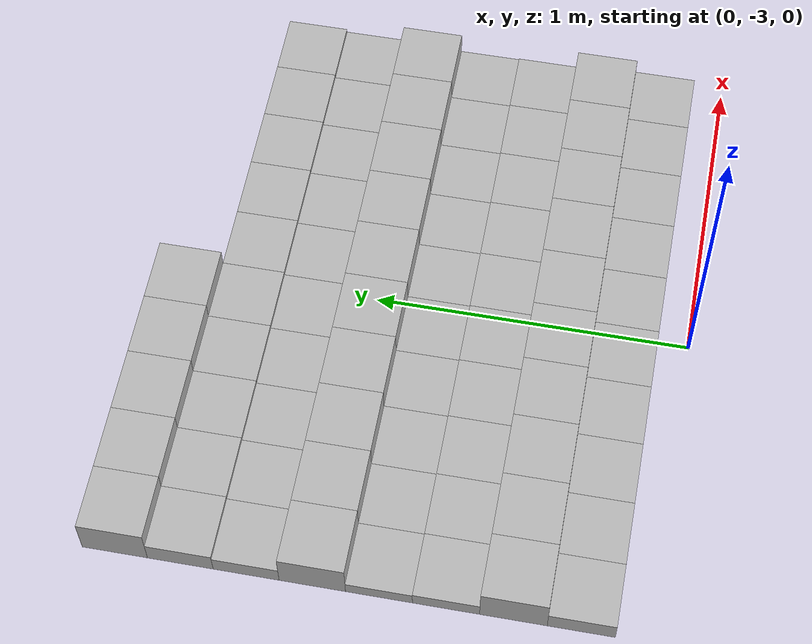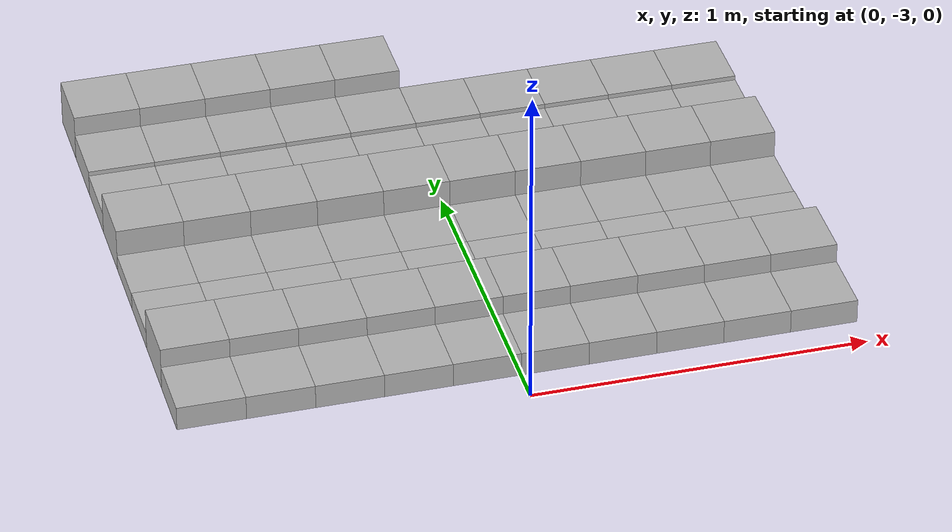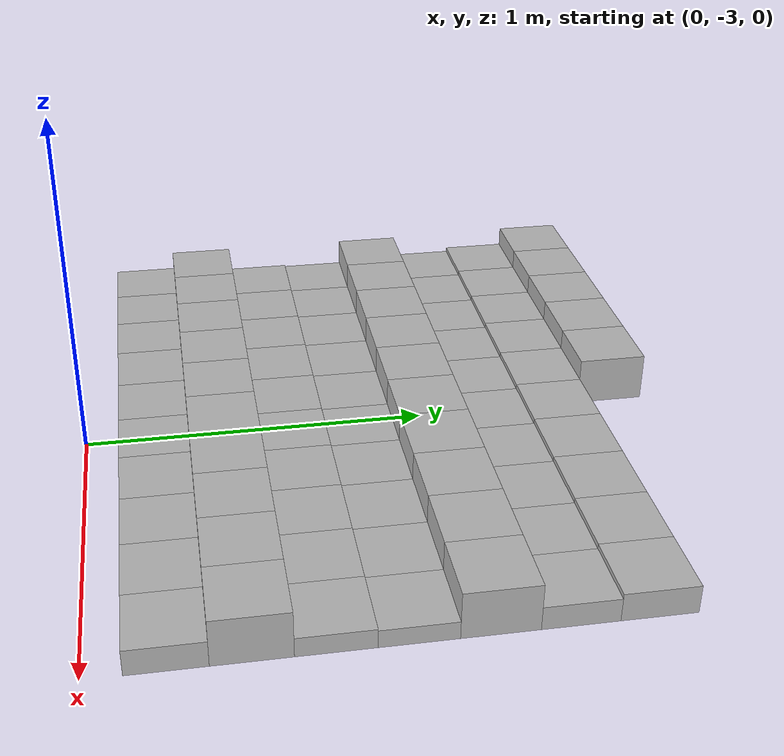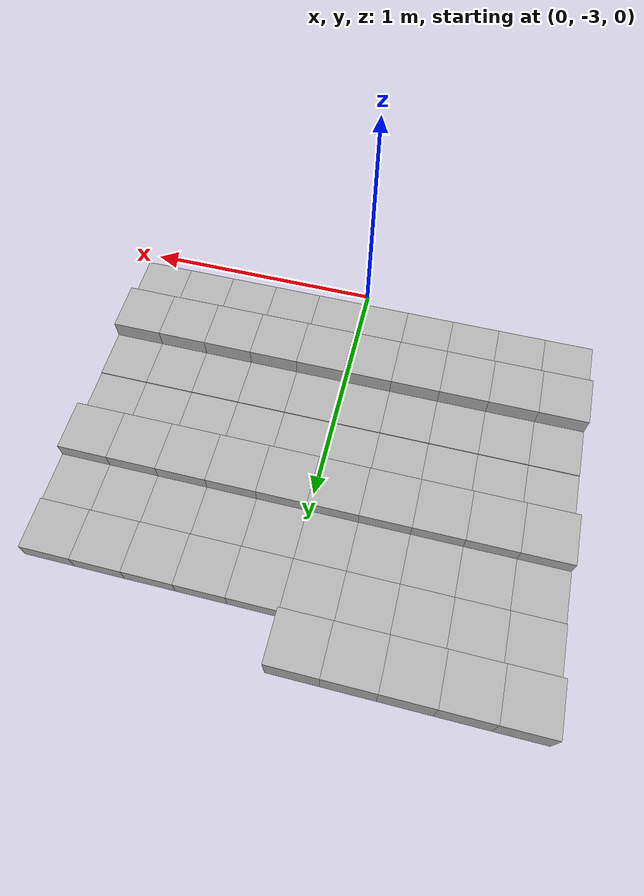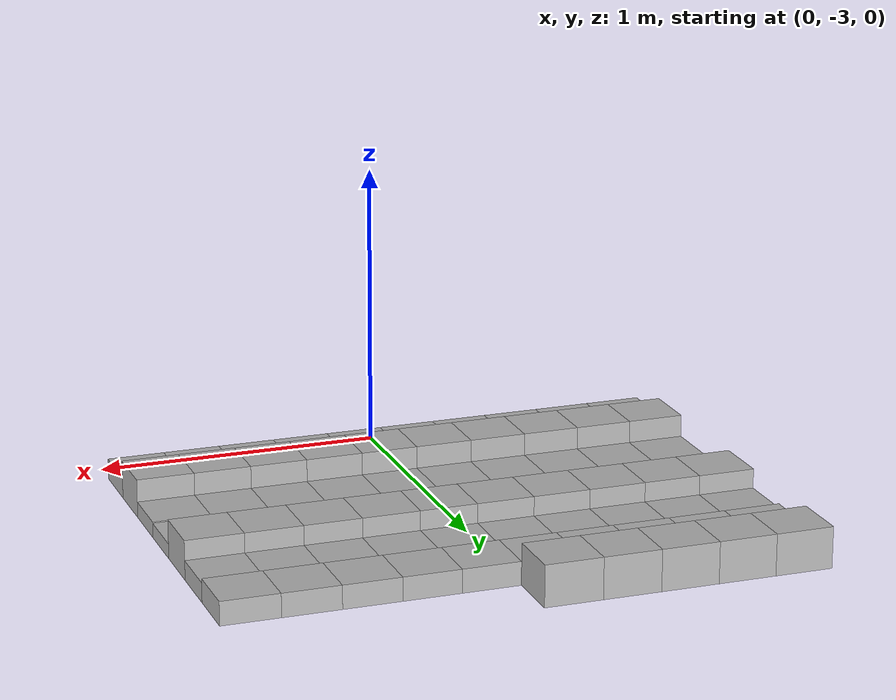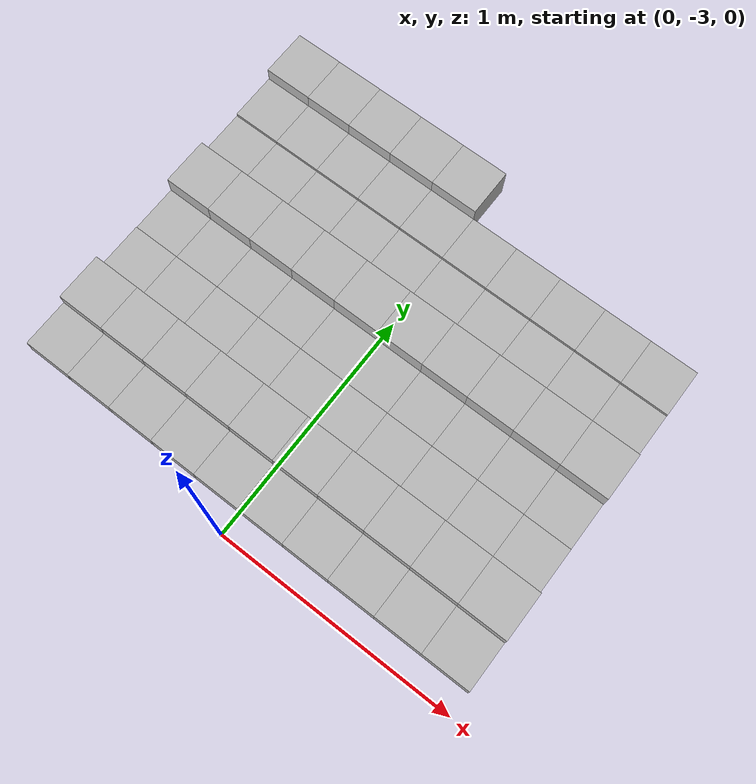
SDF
<sdf version="1.6">
 <model name="Terrain">
  <static>true</static>
  <link name="box_7_0">
   <pose>-0.9 -1.4 0.0721820459374 0 0 0</pose>
   <inertial>
    <mass>1.0</mass>
    <inertia><ixx>0.0</ixx><ixy>0.0</ixy><ixz>0.0</ixz><iyy>0.0</iyy><iyz>0.0</iyz><izz>0.0</izz></inertia>
   </inertial>
   <collision name="collision"><geometry><box><size>0.2 0.2 0.144364091875</size></box></geometry></collision>
   <visual name="visual"><geometry><box><size>0.2 0.2 0.144364091875</size></box></geometry></visual>
  </link>
  <link name="box_7_1">
   <pose>-0.7 -1.4 0.0721820459374 0 0 0</pose>
   <inertial>
    <mass>1.0</mass>
    <inertia><ixx>0.0</ixx><ixy>0.0</ixy><ixz>0.0</ixz><iyy>0.0</iyy><iyz>0.0</iyz><izz>0.0</izz></inertia>
   </inertial>
   <collision name="collision"><geometry><box><size>0.2 0.2 0.144364091875</size></box></geometry></collision>
   <visual name="visual"><geometry><box><size>0.2 0.2 0.144364091875</size></box></geometry></visual>
  </link>
  <link name="box_7_2">
   <pose>-0.5 -1.4 0.0721820459374 0 0 0</pose>
   <inertial>
    <mass>1.0</mass>
    <inertia><ixx>0.0</ixx><ixy>0.0</ixy><ixz>0.0</ixz><iyy>0.0</iyy><iyz>0.0</iyz><izz>0.0</izz></inertia>
   </inertial>
   <collision name="collision"><geometry><box><size>0.2 0.2 0.144364091875</size></box></geometry></collision>
   <visual name="visual"><geometry><box><size>0.2 0.2 0.144364091875</size></box></geometry></visual>
  </link>
  <link name="box_7_3">
   <pose>-0.3 -1.4 0.0721820459374 0 0 0</pose>
   <inertial>
    <mass>1.0</mass>
    <inertia><ixx>0.0</ixx><ixy>0.0</ixy><ixz>0.0</ixz><iyy>0.0</iyy><iyz>0.0</iyz><izz>0.0</izz></inertia>
   </inertial>
   <collision name="collision"><geometry><box><size>0.2 0.2 0.144364091875</size></box></geometry></collision>
   <visual name="visual"><geometry><box><size>0.2 0.2 0.144364091875</size></box></geometry></visual>
  </link>
  <link name="box_7_4">
   <pose>-0.1 -1.4 0.0721820459374 0 0 0</pose>
   <inertial>
    <mass>1.0</mass>
    <inertia><ixx>0.0</ixx><ixy>0.0</ixy><ixz>0.0</ixz><iyy>0.0</iyy><iyz>0.0</iyz><izz>0.0</izz></inertia>
   </inertial>
   <collision name="collision"><geometry><box><size>0.2 0.2 0.144364091875</size></box></geometry></collision>
   <visual name="visual"><geometry><box><size>0.2 0.2 0.144364091875</size></box></geometry></visual>
  </link>
  <link name="box_8_0">
   <pose>-0.9 -1.6 0.0410073518604 0 0 0</pose>
   <inertial>
    <mass>1.0</mass>
    <inertia><ixx>0.0</ixx><ixy>0.0</ixy><ixz>0.0</ixz><iyy>0.0</iyy><iyz>0.0</iyz><izz>0.0</izz></inertia>
   </inertial>
   <collision name="collision"><geometry><box><size>0.2 0.2 0.0820147037207</size></box></geometry></collision>
   <visual name="visual"><geometry><box><size>0.2 0.2 0.0820147037207</size></box></geometry></visual>
  </link>
  <link name="box_8_1">
   <pose>-0.7 -1.6 0.0410073518604 0 0 0</pose>
   <inertial>
    <mass>1.0</mass>
    <inertia><ixx>0.0</ixx><ixy>0.0</ixy><ixz>0.0</ixz><iyy>0.0</iyy><iyz>0.0</iyz><izz>0.0</izz></inertia>
   </inertial>
   <collision name="collision"><geometry><box><size>0.2 0.2 0.0820147037207</size></box></geometry></collision>
   <visual name="visual"><geometry><box><size>0.2 0.2 0.0820147037207</size></box></geometry></visual>
  </link>
  <link name="box_8_2">
   <pose>-0.5 -1.6 0.0410073518604 0 0 0</pose>
   <inertial>
    <mass>1.0</mass>
    <inertia><ixx>0.0</ixx><ixy>0.0</ixy><ixz>0.0</ixz><iyy>0.0</iyy><iyz>0.0</iyz><izz>0.0</izz></inertia>
   </inertial>
   <collision name="collision"><geometry><box><size>0.2 0.2 0.0820147037207</size></box></geometry></collision>
   <visual name="visual"><geometry><box><size>0.2 0.2 0.0820147037207</size></box></geometry></visual>
  </link>
  <link name="box_8_3">
   <pose>-0.3 -1.6 0.0410073518604 0 0 0</pose>
   <inertial>
    <mass>1.0</mass>
    <inertia><ixx>0.0</ixx><ixy>0.0</ixy><ixz>0.0</ixz><iyy>0.0</iyy><iyz>0.0</iyz><izz>0.0</izz></inertia>
   </inertial>
   <collision name="collision"><geometry><box><size>0.2 0.2 0.0820147037207</size></box></geometry></collision>
   <visual name="visual"><geometry><box><size>0.2 0.2 0.0820147037207</size></box></geometry></visual>
  </link>
  <link name="box_8_4">
   <pose>-0.1 -1.6 0.0410073518604 0 0 0</pose>
   <inertial>
    <mass>1.0</mass>
    <inertia><ixx>0.0</ixx><ixy>0.0</ixy><ixz>0.0</ixz><iyy>0.0</iyy><iyz>0.0</iyz><izz>0.0</izz></inertia>
   </inertial>
   <collision name="collision"><geometry><box><size>0.2 0.2 0.0820147037207</size></box></geometry></collision>
   <visual name="visual"><geometry><box><size>0.2 0.2 0.0820147037207</size></box></geometry></visual>
  </link>
  <link name="box_8_5">
   <pose>0.1 -1.6 0.0410073518604 0 0 0</pose>
   <inertial>
    <mass>1.0</mass>
    <inertia><ixx>0.0</ixx><ixy>0.0</ixy><ixz>0.0</ixz><iyy>0.0</iyy><iyz>0.0</iyz><izz>0.0</izz></inertia>
   </inertial>
   <collision name="collision"><geometry><box><size>0.2 0.2 0.0820147037207</size></box></geometry></collision>
   <visual name="visual"><geometry><box><size>0.2 0.2 0.0820147037207</size></box></geometry></visual>
  </link>
  <link name="box_8_6">
   <pose>0.3 -1.6 0.0410073518604 0 0 0</pose>
   <inertial>
    <mass>1.0</mass>
    <inertia><ixx>0.0</ixx><ixy>0.0</ixy><ixz>0.0</ixz><iyy>0.0</iyy><iyz>0.0</iyz><izz>0.0</izz></inertia>
   </inertial>
   <collision name="collision"><geometry><box><size>0.2 0.2 0.0820147037207</size></box></geometry></collision>
   <visual name="visual"><geometry><box><size>0.2 0.2 0.0820147037207</size></box></geometry></visual>
  </link>
  <link name="box_8_7">
   <pose>0.5 -1.6 0.0410073518604 0 0 0</pose>
   <inertial>
    <mass>1.0</mass>
    <inertia><ixx>0.0</ixx><ixy>0.0</ixy><ixz>0.0</ixz><iyy>0.0</iyy><iyz>0.0</iyz><izz>0.0</izz></inertia>
   </inertial>
   <collision name="collision"><geometry><box><size>0.2 0.2 0.0820147037207</size></box></geometry></collision>
   <visual name="visual"><geometry><box><size>0.2 0.2 0.0820147037207</size></box></geometry></visual>
  </link>
  <link name="box_8_8">
   <pose>0.7 -1.6 0.0410073518604 0 0 0</pose>
   <inertial>
    <mass>1.0</mass>
    <inertia><ixx>0.0</ixx><ixy>0.0</ixy><ixz>0.0</ixz><iyy>0.0</iyy><iyz>0.0</iyz><izz>0.0</izz></inertia>
   </inertial>
   <collision name="collision"><geometry><box><size>0.2 0.2 0.0820147037207</size></box></geometry></collision>
   <visual name="visual"><geometry><box><size>0.2 0.2 0.0820147037207</size></box></geometry></visual>
  </link>
  <link name="box_8_9">
   <pose>0.9 -1.6 0.0410073518604 0 0 0</pose>
   <inertial>
    <mass>1.0</mass>
    <inertia><ixx>0.0</ixx><ixy>0.0</ixy><ixz>0.0</ixz><iyy>0.0</iyy><iyz>0.0</iyz><izz>0.0</izz></inertia>
   </inertial>
   <collision name="collision"><geometry><box><size>0.2 0.2 0.0820147037207</size></box></geometry></collision>
   <visual name="visual"><geometry><box><size>0.2 0.2 0.0820147037207</size></box></geometry></visual>
  </link>
  <link name="box_9_0">
   <pose>-0.9 -1.8 0.0339709228931 0 0 0</pose>
   <inertial>
    <mass>1.0</mass>
    <inertia><ixx>0.0</ixx><ixy>0.0</ixy><ixz>0.0</ixz><iyy>0.0</iyy><iyz>0.0</iyz><izz>0.0</izz></inertia>
   </inertial>
   <collision name="collision"><geometry><box><size>0.2 0.2 0.0679418457861</size></box></geometry></collision>
   <visual name="visual"><geometry><box><size>0.2 0.2 0.0679418457861</size></box></geometry></visual>
  </link>
  <link name="box_9_1">
   <pose>-0.7 -1.8 0.0339709228931 0 0 0</pose>
   <inertial>
    <mass>1.0</mass>
    <inertia><ixx>0.0</ixx><ixy>0.0</ixy><ixz>0.0</ixz><iyy>0.0</iyy><iyz>0.0</iyz><izz>0.0</izz></inertia>
   </inertial>
   <collision name="collision"><geometry><box><size>0.2 0.2 0.0679418457861</size></box></geometry></collision>
   <visual name="visual"><geometry><box><size>0.2 0.2 0.0679418457861</size></box></geometry></visual>
  </link>
  <link name="box_9_2">
   <pose>-0.5 -1.8 0.0339709228931 0 0 0</pose>
   <inertial>
    <mass>1.0</mass>
    <inertia><ixx>0.0</ixx><ixy>0.0</ixy><ixz>0.0</ixz><iyy>0.0</iyy><iyz>0.0</iyz><izz>0.0</izz></inertia>
   </inertial>
   <collision name="collision"><geometry><box><size>0.2 0.2 0.0679418457861</size></box></geometry></collision>
   <visual name="visual"><geometry><box><size>0.2 0.2 0.0679418457861</size></box></geometry></visual>
  </link>
  <link name="box_9_3">
   <pose>-0.3 -1.8 0.0339709228931 0 0 0</pose>
   <inertial>
    <mass>1.0</mass>
    <inertia><ixx>0.0</ixx><ixy>0.0</ixy><ixz>0.0</ixz><iyy>0.0</iyy><iyz>0.0</iyz><izz>0.0</izz></inertia>
   </inertial>
   <collision name="collision"><geometry><box><size>0.2 0.2 0.0679418457861</size></box></geometry></collision>
   <visual name="visual"><geometry><box><size>0.2 0.2 0.0679418457861</size></box></geometry></visual>
  </link>
  <link name="box_9_4">
   <pose>-0.1 -1.8 0.0339709228931 0 0 0</pose>
   <inertial>
    <mass>1.0</mass>
    <inertia><ixx>0.0</ixx><ixy>0.0</ixy><ixz>0.0</ixz><iyy>0.0</iyy><iyz>0.0</iyz><izz>0.0</izz></inertia>
   </inertial>
   <collision name="collision"><geometry><box><size>0.2 0.2 0.0679418457861</size></box></geometry></collision>
   <visual name="visual"><geometry><box><size>0.2 0.2 0.0679418457861</size></box></geometry></visual>
  </link>
  <link name="box_9_5">
   <pose>0.1 -1.8 0.0339709228931 0 0 0</pose>
   <inertial>
    <mass>1.0</mass>
    <inertia><ixx>0.0</ixx><ixy>0.0</ixy><ixz>0.0</ixz><iyy>0.0</iyy><iyz>0.0</iyz><izz>0.0</izz></inertia>
   </inertial>
   <collision name="collision"><geometry><box><size>0.2 0.2 0.0679418457861</size></box></geometry></collision>
   <visual name="visual"><geometry><box><size>0.2 0.2 0.0679418457861</size></box></geometry></visual>
  </link>
  <link name="box_9_6">
   <pose>0.3 -1.8 0.0339709228931 0 0 0</pose>
   <inertial>
    <mass>1.0</mass>
    <inertia><ixx>0.0</ixx><ixy>0.0</ixy><ixz>0.0</ixz><iyy>0.0</iyy><iyz>0.0</iyz><izz>0.0</izz></inertia>
   </inertial>
   <collision name="collision"><geometry><box><size>0.2 0.2 0.0679418457861</size></box></geometry></collision>
   <visual name="visual"><geometry><box><size>0.2 0.2 0.0679418457861</size></box></geometry></visual>
  </link>
  <link name="box_9_7">
   <pose>0.5 -1.8 0.0339709228931 0 0 0</pose>
   <inertial>
    <mass>1.0</mass>
    <inertia><ixx>0.0</ixx><ixy>0.0</ixy><ixz>0.0</ixz><iyy>0.0</iyy><iyz>0.0</iyz><izz>0.0</izz></inertia>
   </inertial>
   <collision name="collision"><geometry><box><size>0.2 0.2 0.0679418457861</size></box></geometry></collision>
   <visual name="visual"><geometry><box><size>0.2 0.2 0.0679418457861</size></box></geometry></visual>
  </link>
  <link name="box_9_8">
   <pose>0.7 -1.8 0.0339709228931 0 0 0</pose>
   <inertial>
    <mass>1.0</mass>
    <inertia><ixx>0.0</ixx><ixy>0.0</ixy><ixz>0.0</ixz><iyy>0.0</iyy><iyz>0.0</iyz><izz>0.0</izz></inertia>
   </inertial>
   <collision name="collision"><geometry><box><size>0.2 0.2 0.0679418457861</size></box></geometry></collision>
   <visual name="visual"><geometry><box><size>0.2 0.2 0.0679418457861</size></box></geometry></visual>
  </link>
  <link name="box_9_9">
   <pose>0.9 -1.8 0.0339709228931 0 0 0</pose>
   <inertial>
    <mass>1.0</mass>
    <inertia><ixx>0.0</ixx><ixy>0.0</ixy><ixz>0.0</ixz><iyy>0.0</iyy><iyz>0.0</iyz><izz>0.0</izz></inertia>
   </inertial>
   <collision name="collision"><geometry><box><size>0.2 0.2 0.0679418457861</size></box></geometry></collision>
   <visual name="visual"><geometry><box><size>0.2 0.2 0.0679418457861</size></box></geometry></visual>
  </link>
  <link name="box_10_0">
   <pose>-0.9 -2.0 0.0682616355616 0 0 0</pose>
   <inertial>
    <mass>1.0</mass>
    <inertia><ixx>0.0</ixx><ixy>0.0</ixy><ixz>0.0</ixz><iyy>0.0</iyy><iyz>0.0</iyz><izz>0.0</izz></inertia>
   </inertial>
   <collision name="collision"><geometry><box><size>0.2 0.2 0.136523271123</size></box></geometry></collision>
   <visual name="visual"><geometry><box><size>0.2 0.2 0.136523271123</size></box></geometry></visual>
  </link>
  <link name="box_10_1">
   <pose>-0.7 -2.0 0.0682616355616 0 0 0</pose>
   <inertial>
    <mass>1.0</mass>
    <inertia><ixx>0.0</ixx><ixy>0.0</ixy><ixz>0.0</ixz><iyy>0.0</iyy><iyz>0.0</iyz><izz>0.0</izz></inertia>
   </inertial>
   <collision name="collision"><geometry><box><size>0.2 0.2 0.136523271123</size></box></geometry></collision>
   <visual name="visual"><geometry><box><size>0.2 0.2 0.136523271123</size></box></geometry></visual>
  </link>
  <link name="box_10_2">
   <pose>-0.5 -2.0 0.0682616355616 0 0 0</pose>
   <inertial>
    <mass>1.0</mass>
    <inertia><ixx>0.0</ixx><ixy>0.0</ixy><ixz>0.0</ixz><iyy>0.0</iyy><iyz>0.0</iyz><izz>0.0</izz></inertia>
   </inertial>
   <collision name="collision"><geometry><box><size>0.2 0.2 0.136523271123</size></box></geometry></collision>
   <visual name="visual"><geometry><box><size>0.2 0.2 0.136523271123</size></box></geometry></visual>
  </link>
  <link name="box_10_3">
   <pose>-0.3 -2.0 0.0682616355616 0 0 0</pose>
   <inertial>
    <mass>1.0</mass>
    <inertia><ixx>0.0</ixx><ixy>0.0</ixy><ixz>0.0</ixz><iyy>0.0</iyy><iyz>0.0</iyz><izz>0.0</izz></inertia>
   </inertial>
   <collision name="collision"><geometry><box><size>0.2 0.2 0.136523271123</size></box></geometry></collision>
   <visual name="visual"><geometry><box><size>0.2 0.2 0.136523271123</size></box></geometry></visual>
  </link>
  <link name="box_10_4">
   <pose>-0.1 -2.0 0.0682616355616 0 0 0</pose>
   <inertial>
    <mass>1.0</mass>
    <inertia><ixx>0.0</ixx><ixy>0.0</ixy><ixz>0.0</ixz><iyy>0.0</iyy><iyz>0.0</iyz><izz>0.0</izz></inertia>
   </inertial>
   <collision name="collision"><geometry><box><size>0.2 0.2 0.136523271123</size></box></geometry></collision>
   <visual name="visual"><geometry><box><size>0.2 0.2 0.136523271123</size></box></geometry></visual>
  </link>
  <link name="box_10_5">
   <pose>0.1 -2.0 0.0682616355616 0 0 0</pose>
   <inertial>
    <mass>1.0</mass>
    <inertia><ixx>0.0</ixx><ixy>0.0</ixy><ixz>0.0</ixz><iyy>0.0</iyy><iyz>0.0</iyz><izz>0.0</izz></inertia>
   </inertial>
   <collision name="collision"><geometry><box><size>0.2 0.2 0.136523271123</size></box></geometry></collision>
   <visual name="visual"><geometry><box><size>0.2 0.2 0.136523271123</size></box></geometry></visual>
  </link>
  <link name="box_10_6">
   <pose>0.3 -2.0 0.0682616355616 0 0 0</pose>
   <inertial>
    <mass>1.0</mass>
    <inertia><ixx>0.0</ixx><ixy>0.0</ixy><ixz>0.0</ixz><iyy>0.0</iyy><iyz>0.0</iyz><izz>0.0</izz></inertia>
   </inertial>
   <collision name="collision"><geometry><box><size>0.2 0.2 0.136523271123</size></box></geometry></collision>
   <visual name="visual"><geometry><box><size>0.2 0.2 0.136523271123</size></box></geometry></visual>
  </link>
  <link name="box_10_7">
   <pose>0.5 -2.0 0.0682616355616 0 0 0</pose>
   <inertial>
    <mass>1.0</mass>
    <inertia><ixx>0.0</ixx><ixy>0.0</ixy><ixz>0.0</ixz><iyy>0.0</iyy><iyz>0.0</iyz><izz>0.0</izz></inertia>
   </inertial>
   <collision name="collision"><geometry><box><size>0.2 0.2 0.136523271123</size></box></geometry></collision>
   <visual name="visual"><geometry><box><size>0.2 0.2 0.136523271123</size></box></geometry></visual>
  </link>
  <link name="box_10_8">
   <pose>0.7 -2.0 0.0682616355616 0 0 0</pose>
   <inertial>
    <mass>1.0</mass>
    <inertia><ixx>0.0</ixx><ixy>0.0</ixy><ixz>0.0</ixz><iyy>0.0</iyy><iyz>0.0</iyz><izz>0.0</izz></inertia>
   </inertial>
   <collision name="collision"><geometry><box><size>0.2 0.2 0.136523271123</size></box></geometry></collision>
   <visual name="visual"><geometry><box><size>0.2 0.2 0.136523271123</size></box></geometry></visual>
  </link>
  <link name="box_10_9">
   <pose>0.9 -2.0 0.0682616355616 0 0 0</pose>
   <inertial>
    <mass>1.0</mass>
    <inertia><ixx>0.0</ixx><ixy>0.0</ixy><ixz>0.0</ixz><iyy>0.0</iyy><iyz>0.0</iyz><izz>0.0</izz></inertia>
   </inertial>
   <collision name="collision"><geometry><box><size>0.2 0.2 0.136523271123</size></box></geometry></collision>
   <visual name="visual"><geometry><box><size>0.2 0.2 0.136523271123</size></box></geometry></visual>
  </link>
  <link name="box_11_0">
   <pose>-0.9 -2.2 0.0258799833949 0 0 0</pose>
   <inertial>
    <mass>1.0</mass>
    <inertia><ixx>0.0</ixx><ixy>0.0</ixy><ixz>0.0</ixz><iyy>0.0</iyy><iyz>0.0</iyz><izz>0.0</izz></inertia>
   </inertial>
   <collision name="collision"><geometry><box><size>0.2 0.2 0.0517599667898</size></box></geometry></collision>
   <visual name="visual"><geometry><box><size>0.2 0.2 0.0517599667898</size></box></geometry></visual>
  </link>
  <link name="box_11_1">
   <pose>-0.7 -2.2 0.0258799833949 0 0 0</pose>
   <inertial>
    <mass>1.0</mass>
    <inertia><ixx>0.0</ixx><ixy>0.0</ixy><ixz>0.0</ixz><iyy>0.0</iyy><iyz>0.0</iyz><izz>0.0</izz></inertia>
   </inertial>
   <collision name="collision"><geometry><box><size>0.2 0.2 0.0517599667898</size></box></geometry></collision>
   <visual name="visual"><geometry><box><size>0.2 0.2 0.0517599667898</size></box></geometry></visual>
  </link>
  <link name="box_11_2">
   <pose>-0.5 -2.2 0.0258799833949 0 0 0</pose>
   <inertial>
    <mass>1.0</mass>
    <inertia><ixx>0.0</ixx><ixy>0.0</ixy><ixz>0.0</ixz><iyy>0.0</iyy><iyz>0.0</iyz><izz>0.0</izz></inertia>
   </inertial>
   <collision name="collision"><geometry><box><size>0.2 0.2 0.0517599667898</size></box></geometry></collision>
   <visual name="visual"><geometry><box><size>0.2 0.2 0.0517599667898</size></box></geometry></visual>
  </link>
  <link name="box_11_3">
   <pose>-0.3 -2.2 0.0258799833949 0 0 0</pose>
   <inertial>
    <mass>1.0</mass>
    <inertia><ixx>0.0</ixx><ixy>0.0</ixy><ixz>0.0</ixz><iyy>0.0</iyy><iyz>0.0</iyz><izz>0.0</izz></inertia>
   </inertial>
   <collision name="collision"><geometry><box><size>0.2 0.2 0.0517599667898</size></box></geometry></collision>
   <visual name="visual"><geometry><box><size>0.2 0.2 0.0517599667898</size></box></geometry></visual>
  </link>
  <link name="box_11_4">
   <pose>-0.1 -2.2 0.0258799833949 0 0 0</pose>
   <inertial>
    <mass>1.0</mass>
    <inertia><ixx>0.0</ixx><ixy>0.0</ixy><ixz>0.0</ixz><iyy>0.0</iyy><iyz>0.0</iyz><izz>0.0</izz></inertia>
   </inertial>
   <collision name="collision"><geometry><box><size>0.2 0.2 0.0517599667898</size></box></geometry></collision>
   <visual name="visual"><geometry><box><size>0.2 0.2 0.0517599667898</size></box></geometry></visual>
  </link>
  <link name="box_11_5">
   <pose>0.1 -2.2 0.0258799833949 0 0 0</pose>
   <inertial>
    <mass>1.0</mass>
    <inertia><ixx>0.0</ixx><ixy>0.0</ixy><ixz>0.0</ixz><iyy>0.0</iyy><iyz>0.0</iyz><izz>0.0</izz></inertia>
   </inertial>
   <collision name="collision"><geometry><box><size>0.2 0.2 0.0517599667898</size></box></geometry></collision>
   <visual name="visual"><geometry><box><size>0.2 0.2 0.0517599667898</size></box></geometry></visual>
  </link>
  <link name="box_11_6">
   <pose>0.3 -2.2 0.0258799833949 0 0 0</pose>
   <inertial>
    <mass>1.0</mass>
    <inertia><ixx>0.0</ixx><ixy>0.0</ixy><ixz>0.0</ixz><iyy>0.0</iyy><iyz>0.0</iyz><izz>0.0</izz></inertia>
   </inertial>
   <collision name="collision"><geometry><box><size>0.2 0.2 0.0517599667898</size></box></geometry></collision>
   <visual name="visual"><geometry><box><size>0.2 0.2 0.0517599667898</size></box></geometry></visual>
  </link>
  <link name="box_11_7">
   <pose>0.5 -2.2 0.0258799833949 0 0 0</pose>
   <inertial>
    <mass>1.0</mass>
    <inertia><ixx>0.0</ixx><ixy>0.0</ixy><ixz>0.0</ixz><iyy>0.0</iyy><iyz>0.0</iyz><izz>0.0</izz></inertia>
   </inertial>
   <collision name="collision"><geometry><box><size>0.2 0.2 0.0517599667898</size></box></geometry></collision>
   <visual name="visual"><geometry><box><size>0.2 0.2 0.0517599667898</size></box></geometry></visual>
  </link>
  <link name="box_11_8">
   <pose>0.7 -2.2 0.0258799833949 0 0 0</pose>
   <inertial>
    <mass>1.0</mass>
    <inertia><ixx>0.0</ixx><ixy>0.0</ixy><ixz>0.0</ixz><iyy>0.0</iyy><iyz>0.0</iyz><izz>0.0</izz></inertia>
   </inertial>
   <collision name="collision"><geometry><box><size>0.2 0.2 0.0517599667898</size></box></geometry></collision>
   <visual name="visual"><geometry><box><size>0.2 0.2 0.0517599667898</size></box></geometry></visual>
  </link>
  <link name="box_11_9">
   <pose>0.9 -2.2 0.0258799833949 0 0 0</pose>
   <inertial>
    <mass>1.0</mass>
    <inertia><ixx>0.0</ixx><ixy>0.0</ixy><ixz>0.0</ixz><iyy>0.0</iyy><iyz>0.0</iyz><izz>0.0</izz></inertia>
   </inertial>
   <collision name="collision"><geometry><box><size>0.2 0.2 0.0517599667898</size></box></geometry></collision>
   <visual name="visual"><geometry><box><size>0.2 0.2 0.0517599667898</size></box></geometry></visual>
  </link>
  <link name="box_12_0">
   <pose>-0.9 -2.4 0.0280012503296 0 0 0</pose>
   <inertial>
    <mass>1.0</mass>
    <inertia><ixx>0.0</ixx><ixy>0.0</ixy><ixz>0.0</ixz><iyy>0.0</iyy><iyz>0.0</iyz><izz>0.0</izz></inertia>
   </inertial>
   <collision name="collision"><geometry><box><size>0.2 0.2 0.0560025006593</size></box></geometry></collision>
   <visual name="visual"><geometry><box><size>0.2 0.2 0.0560025006593</size></box></geometry></visual>
  </link>
  <link name="box_12_1">
   <pose>-0.7 -2.4 0.0280012503296 0 0 0</pose>
   <inertial>
    <mass>1.0</mass>
    <inertia><ixx>0.0</ixx><ixy>0.0</ixy><ixz>0.0</ixz><iyy>0.0</iyy><iyz>0.0</iyz><izz>0.0</izz></inertia>
   </inertial>
   <collision name="collision"><geometry><box><size>0.2 0.2 0.0560025006593</size></box></geometry></collision>
   <visual name="visual"><geometry><box><size>0.2 0.2 0.0560025006593</size></box></geometry></visual>
  </link>
  <link name="box_12_2">
   <pose>-0.5 -2.4 0.0280012503296 0 0 0</pose>
   <inertial>
    <mass>1.0</mass>
    <inertia><ixx>0.0</ixx><ixy>0.0</ixy><ixz>0.0</ixz><iyy>0.0</iyy><iyz>0.0</iyz><izz>0.0</izz></inertia>
   </inertial>
   <collision name="collision"><geometry><box><size>0.2 0.2 0.0560025006593</size></box></geometry></collision>
   <visual name="visual"><geometry><box><size>0.2 0.2 0.0560025006593</size></box></geometry></visual>
  </link>
  <link name="box_12_3">
   <pose>-0.3 -2.4 0.0280012503296 0 0 0</pose>
   <inertial>
    <mass>1.0</mass>
    <inertia><ixx>0.0</ixx><ixy>0.0</ixy><ixz>0.0</ixz><iyy>0.0</iyy><iyz>0.0</iyz><izz>0.0</izz></inertia>
   </inertial>
   <collision name="collision"><geometry><box><size>0.2 0.2 0.0560025006593</size></box></geometry></collision>
   <visual name="visual"><geometry><box><size>0.2 0.2 0.0560025006593</size></box></geometry></visual>
  </link>
  <link name="box_12_4">
   <pose>-0.1 -2.4 0.0280012503296 0 0 0</pose>
   <inertial>
    <mass>1.0</mass>
    <inertia><ixx>0.0</ixx><ixy>0.0</ixy><ixz>0.0</ixz><iyy>0.0</iyy><iyz>0.0</iyz><izz>0.0</izz></inertia>
   </inertial>
   <collision name="collision"><geometry><box><size>0.2 0.2 0.0560025006593</size></box></geometry></collision>
   <visual name="visual"><geometry><box><size>0.2 0.2 0.0560025006593</size></box></geometry></visual>
  </link>
  <link name="box_12_5">
   <pose>0.1 -2.4 0.0280012503296 0 0 0</pose>
   <inertial>
    <mass>1.0</mass>
    <inertia><ixx>0.0</ixx><ixy>0.0</ixy><ixz>0.0</ixz><iyy>0.0</iyy><iyz>0.0</iyz><izz>0.0</izz></inertia>
   </inertial>
   <collision name="collision"><geometry><box><size>0.2 0.2 0.0560025006593</size></box></geometry></collision>
   <visual name="visual"><geometry><box><size>0.2 0.2 0.0560025006593</size></box></geometry></visual>
  </link>
  <link name="box_12_6">
   <pose>0.3 -2.4 0.0280012503296 0 0 0</pose>
   <inertial>
    <mass>1.0</mass>
    <inertia><ixx>0.0</ixx><ixy>0.0</ixy><ixz>0.0</ixz><iyy>0.0</iyy><iyz>0.0</iyz><izz>0.0</izz></inertia>
   </inertial>
   <collision name="collision"><geometry><box><size>0.2 0.2 0.0560025006593</size></box></geometry></collision>
   <visual name="visual"><geometry><box><size>0.2 0.2 0.0560025006593</size></box></geometry></visual>
  </link>
  <link name="box_12_7">
   <pose>0.5 -2.4 0.0280012503296 0 0 0</pose>
   <inertial>
    <mass>1.0</mass>
    <inertia><ixx>0.0</ixx><ixy>0.0</ixy><ixz>0.0</ixz><iyy>0.0</iyy><iyz>0.0</iyz><izz>0.0</izz></inertia>
   </inertial>
   <collision name="collision"><geometry><box><size>0.2 0.2 0.0560025006593</size></box></geometry></collision>
   <visual name="visual"><geometry><box><size>0.2 0.2 0.0560025006593</size></box></geometry></visual>
  </link>
  <link name="box_12_8">
   <pose>0.7 -2.4 0.0280012503296 0 0 0</pose>
   <inertial>
    <mass>1.0</mass>
    <inertia><ixx>0.0</ixx><ixy>0.0</ixy><ixz>0.0</ixz><iyy>0.0</iyy><iyz>0.0</iyz><izz>0.0</izz></inertia>
   </inertial>
   <collision name="collision"><geometry><box><size>0.2 0.2 0.0560025006593</size></box></geometry></collision>
   <visual name="visual"><geometry><box><size>0.2 0.2 0.0560025006593</size></box></geometry></visual>
  </link>
  <link name="box_12_9">
   <pose>0.9 -2.4 0.0280012503296 0 0 0</pose>
   <inertial>
    <mass>1.0</mass>
    <inertia><ixx>0.0</ixx><ixy>0.0</ixy><ixz>0.0</ixz><iyy>0.0</iyy><iyz>0.0</iyz><izz>0.0</izz></inertia>
   </inertial>
   <collision name="collision"><geometry><box><size>0.2 0.2 0.0560025006593</size></box></geometry></collision>
   <visual name="visual"><geometry><box><size>0.2 0.2 0.0560025006593</size></box></geometry></visual>
  </link>
  <link name="box_13_0">
   <pose>-0.9 -2.6 0.0675033043981 0 0 0</pose>
   <inertial>
    <mass>1.0</mass>
    <inertia><ixx>0.0</ixx><ixy>0.0</ixy><ixz>0.0</ixz><iyy>0.0</iyy><iyz>0.0</iyz><izz>0.0</izz></inertia>
   </inertial>
   <collision name="collision"><geometry><box><size>0.2 0.2 0.135006608796</size></box></geometry></collision>
   <visual name="visual"><geometry><box><size>0.2 0.2 0.135006608796</size></box></geometry></visual>
  </link>
  <link name="box_13_1">
   <pose>-0.7 -2.6 0.0675033043981 0 0 0</pose>
   <inertial>
    <mass>1.0</mass>
    <inertia><ixx>0.0</ixx><ixy>0.0</ixy><ixz>0.0</ixz><iyy>0.0</iyy><iyz>0.0</iyz><izz>0.0</izz></inertia>
   </inertial>
   <collision name="collision"><geometry><box><size>0.2 0.2 0.135006608796</size></box></geometry></collision>
   <visual name="visual"><geometry><box><size>0.2 0.2 0.135006608796</size></box></geometry></visual>
  </link>
  <link name="box_13_2">
   <pose>-0.5 -2.6 0.0675033043981 0 0 0</pose>
   <inertial>
    <mass>1.0</mass>
    <inertia><ixx>0.0</ixx><ixy>0.0</ixy><ixz>0.0</ixz><iyy>0.0</iyy><iyz>0.0</iyz><izz>0.0</izz></inertia>
   </inertial>
   <collision name="collision"><geometry><box><size>0.2 0.2 0.135006608796</size></box></geometry></collision>
   <visual name="visual"><geometry><box><size>0.2 0.2 0.135006608796</size></box></geometry></visual>
  </link>
  <link name="box_13_3">
   <pose>-0.3 -2.6 0.0675033043981 0 0 0</pose>
   <inertial>
    <mass>1.0</mass>
    <inertia><ixx>0.0</ixx><ixy>0.0</ixy><ixz>0.0</ixz><iyy>0.0</iyy><iyz>0.0</iyz><izz>0.0</izz></inertia>
   </inertial>
   <collision name="collision"><geometry><box><size>0.2 0.2 0.135006608796</size></box></geometry></collision>
   <visual name="visual"><geometry><box><size>0.2 0.2 0.135006608796</size></box></geometry></visual>
  </link>
  <link name="box_13_4">
   <pose>-0.1 -2.6 0.0675033043981 0 0 0</pose>
   <inertial>
    <mass>1.0</mass>
    <inertia><ixx>0.0</ixx><ixy>0.0</ixy><ixz>0.0</ixz><iyy>0.0</iyy><iyz>0.0</iyz><izz>0.0</izz></inertia>
   </inertial>
   <collision name="collision"><geometry><box><size>0.2 0.2 0.135006608796</size></box></geometry></collision>
   <visual name="visual"><geometry><box><size>0.2 0.2 0.135006608796</size></box></geometry></visual>
  </link>
  <link name="box_13_5">
   <pose>0.1 -2.6 0.0675033043981 0 0 0</pose>
   <inertial>
    <mass>1.0</mass>
    <inertia><ixx>0.0</ixx><ixy>0.0</ixy><ixz>0.0</ixz><iyy>0.0</iyy><iyz>0.0</iyz><izz>0.0</izz></inertia>
   </inertial>
   <collision name="collision"><geometry><box><size>0.2 0.2 0.135006608796</size></box></geometry></collision>
   <visual name="visual"><geometry><box><size>0.2 0.2 0.135006608796</size></box></geometry></visual>
  </link>
  <link name="box_13_6">
   <pose>0.3 -2.6 0.0675033043981 0 0 0</pose>
   <inertial>
    <mass>1.0</mass>
    <inertia><ixx>0.0</ixx><ixy>0.0</ixy><ixz>0.0</ixz><iyy>0.0</iyy><iyz>0.0</iyz><izz>0.0</izz></inertia>
   </inertial>
   <collision name="collision"><geometry><box><size>0.2 0.2 0.135006608796</size></box></geometry></collision>
   <visual name="visual"><geometry><box><size>0.2 0.2 0.135006608796</size></box></geometry></visual>
  </link>
  <link name="box_13_7">
   <pose>0.5 -2.6 0.0675033043981 0 0 0</pose>
   <inertial>
    <mass>1.0</mass>
    <inertia><ixx>0.0</ixx><ixy>0.0</ixy><ixz>0.0</ixz><iyy>0.0</iyy><iyz>0.0</iyz><izz>0.0</izz></inertia>
   </inertial>
   <collision name="collision"><geometry><box><size>0.2 0.2 0.135006608796</size></box></geometry></collision>
   <visual name="visual"><geometry><box><size>0.2 0.2 0.135006608796</size></box></geometry></visual>
  </link>
  <link name="box_13_8">
   <pose>0.7 -2.6 0.0675033043981 0 0 0</pose>
   <inertial>
    <mass>1.0</mass>
    <inertia><ixx>0.0</ixx><ixy>0.0</ixy><ixz>0.0</ixz><iyy>0.0</iyy><iyz>0.0</iyz><izz>0.0</izz></inertia>
   </inertial>
   <collision name="collision"><geometry><box><size>0.2 0.2 0.135006608796</size></box></geometry></collision>
   <visual name="visual"><geometry><box><size>0.2 0.2 0.135006608796</size></box></geometry></visual>
  </link>
  <link name="box_13_9">
   <pose>0.9 -2.6 0.0675033043981 0 0 0</pose>
   <inertial>
    <mass>1.0</mass>
    <inertia><ixx>0.0</ixx><ixy>0.0</ixy><ixz>0.0</ixz><iyy>0.0</iyy><iyz>0.0</iyz><izz>0.0</izz></inertia>
   </inertial>
   <collision name="collision"><geometry><box><size>0.2 0.2 0.135006608796</size></box></geometry></collision>
   <visual name="visual"><geometry><box><size>0.2 0.2 0.135006608796</size></box></geometry></visual>
  </link>
  <link name="box_14_0">
   <pose>-0.9 -2.8 0.0373267668813 0 0 0</pose>
   <inertial>
    <mass>1.0</mass>
    <inertia><ixx>0.0</ixx><ixy>0.0</ixy><ixz>0.0</ixz><iyy>0.0</iyy><iyz>0.0</iyz><izz>0.0</izz></inertia>
   </inertial>
   <collision name="collision"><geometry><box><size>0.2 0.2 0.0746535337626</size></box></geometry></collision>
   <visual name="visual"><geometry><box><size>0.2 0.2 0.0746535337626</size></box></geometry></visual>
  </link>
  <link name="box_14_1">
   <pose>-0.7 -2.8 0.0373267668813 0 0 0</pose>
   <inertial>
    <mass>1.0</mass>
    <inertia><ixx>0.0</ixx><ixy>0.0</ixy><ixz>0.0</ixz><iyy>0.0</iyy><iyz>0.0</iyz><izz>0.0</izz></inertia>
   </inertial>
   <collision name="collision"><geometry><box><size>0.2 0.2 0.0746535337626</size></box></geometry></collision>
   <visual name="visual"><geometry><box><size>0.2 0.2 0.0746535337626</size></box></geometry></visual>
  </link>
  <link name="box_14_2">
   <pose>-0.5 -2.8 0.0373267668813 0 0 0</pose>
   <inertial>
    <mass>1.0</mass>
    <inertia><ixx>0.0</ixx><ixy>0.0</ixy><ixz>0.0</ixz><iyy>0.0</iyy><iyz>0.0</iyz><izz>0.0</izz></inertia>
   </inertial>
   <collision name="collision"><geometry><box><size>0.2 0.2 0.0746535337626</size></box></geometry></collision>
   <visual name="visual"><geometry><box><size>0.2 0.2 0.0746535337626</size></box></geometry></visual>
  </link>
  <link name="box_14_3">
   <pose>-0.3 -2.8 0.0373267668813 0 0 0</pose>
   <inertial>
    <mass>1.0</mass>
    <inertia><ixx>0.0</ixx><ixy>0.0</ixy><ixz>0.0</ixz><iyy>0.0</iyy><iyz>0.0</iyz><izz>0.0</izz></inertia>
   </inertial>
   <collision name="collision"><geometry><box><size>0.2 0.2 0.0746535337626</size></box></geometry></collision>
   <visual name="visual"><geometry><box><size>0.2 0.2 0.0746535337626</size></box></geometry></visual>
  </link>
  <link name="box_14_4">
   <pose>-0.1 -2.8 0.0373267668813 0 0 0</pose>
   <inertial>
    <mass>1.0</mass>
    <inertia><ixx>0.0</ixx><ixy>0.0</ixy><ixz>0.0</ixz><iyy>0.0</iyy><iyz>0.0</iyz><izz>0.0</izz></inertia>
   </inertial>
   <collision name="collision"><geometry><box><size>0.2 0.2 0.0746535337626</size></box></geometry></collision>
   <visual name="visual"><geometry><box><size>0.2 0.2 0.0746535337626</size></box></geometry></visual>
  </link>
  <link name="box_14_5">
   <pose>0.1 -2.8 0.0373267668813 0 0 0</pose>
   <inertial>
    <mass>1.0</mass>
    <inertia><ixx>0.0</ixx><ixy>0.0</ixy><ixz>0.0</ixz><iyy>0.0</iyy><iyz>0.0</iyz><izz>0.0</izz></inertia>
   </inertial>
   <collision name="collision"><geometry><box><size>0.2 0.2 0.0746535337626</size></box></geometry></collision>
   <visual name="visual"><geometry><box><size>0.2 0.2 0.0746535337626</size></box></geometry></visual>
  </link>
  <link name="box_14_6">
   <pose>0.3 -2.8 0.0373267668813 0 0 0</pose>
   <inertial>
    <mass>1.0</mass>
    <inertia><ixx>0.0</ixx><ixy>0.0</ixy><ixz>0.0</ixz><iyy>0.0</iyy><iyz>0.0</iyz><izz>0.0</izz></inertia>
   </inertial>
   <collision name="collision"><geometry><box><size>0.2 0.2 0.0746535337626</size></box></geometry></collision>
   <visual name="visual"><geometry><box><size>0.2 0.2 0.0746535337626</size></box></geometry></visual>
  </link>
  <link name="box_14_7">
   <pose>0.5 -2.8 0.0373267668813 0 0 0</pose>
   <inertial>
    <mass>1.0</mass>
    <inertia><ixx>0.0</ixx><ixy>0.0</ixy><ixz>0.0</ixz><iyy>0.0</iyy><iyz>0.0</iyz><izz>0.0</izz></inertia>
   </inertial>
   <collision name="collision"><geometry><box><size>0.2 0.2 0.0746535337626</size></box></geometry></collision>
   <visual name="visual"><geometry><box><size>0.2 0.2 0.0746535337626</size></box></geometry></visual>
  </link>
  <link name="box_14_8">
   <pose>0.7 -2.8 0.0373267668813 0 0 0</pose>
   <inertial>
    <mass>1.0</mass>
    <inertia><ixx>0.0</ixx><ixy>0.0</ixy><ixz>0.0</ixz><iyy>0.0</iyy><iyz>0.0</iyz><izz>0.0</izz></inertia>
   </inertial>
   <collision name="collision"><geometry><box><size>0.2 0.2 0.0746535337626</size></box></geometry></collision>
   <visual name="visual"><geometry><box><size>0.2 0.2 0.0746535337626</size></box></geometry></visual>
  </link>
  <link name="box_14_9">
   <pose>0.9 -2.8 0.0373267668813 0 0 0</pose>
   <inertial>
    <mass>1.0</mass>
    <inertia><ixx>0.0</ixx><ixy>0.0</ixy><ixz>0.0</ixz><iyy>0.0</iyy><iyz>0.0</iyz><izz>0.0</izz></inertia>
   </inertial>
   <collision name="collision"><geometry><box><size>0.2 0.2 0.0746535337626</size></box></geometry></collision>
   <visual name="visual"><geometry><box><size>0.2 0.2 0.0746535337626</size></box></geometry></visual>
  </link>
 </model>
</sdf>
